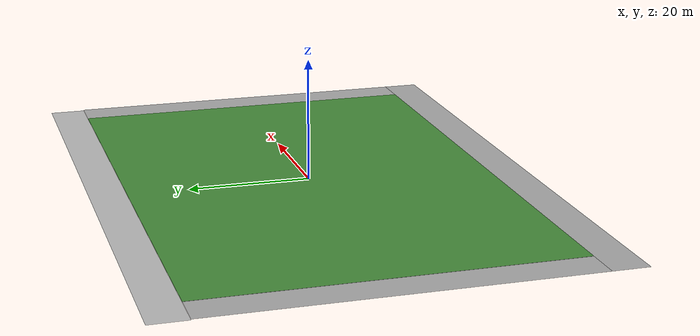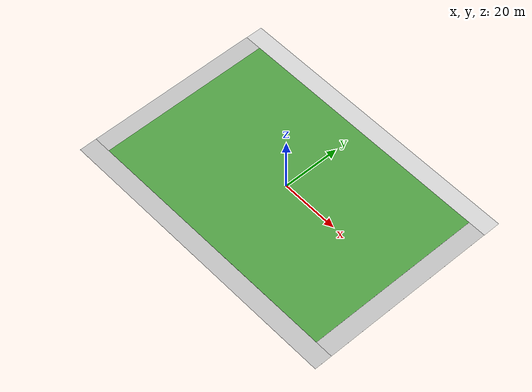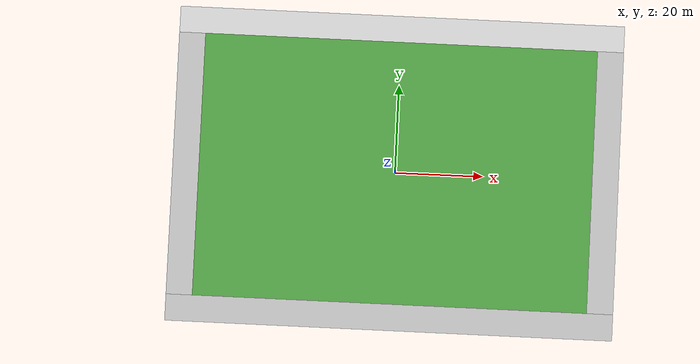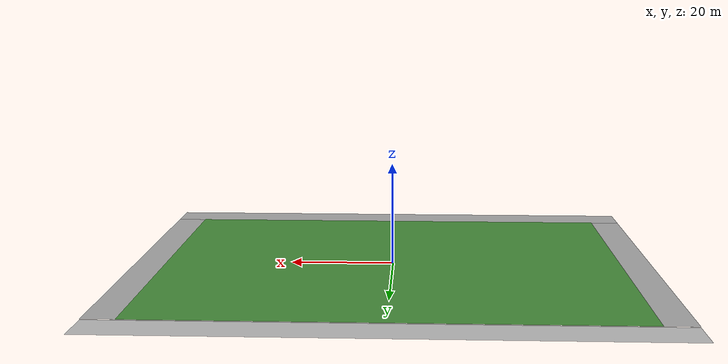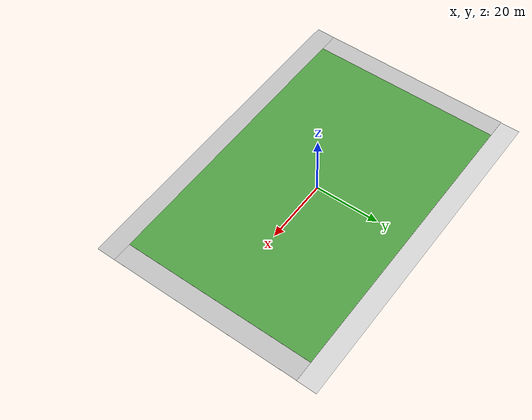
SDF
<sdf version="1.4">
 <world name="default">
  <light name="sun" type="directional">
   <pose>0 0 10 0 -0 0</pose>
   <diffuse>0.8 0.8 0.8 1</diffuse>
   <specular>0.2 0.2 0.2 1</specular>
   <attenuation>
    <range>1000</range>
    <constant>0.9</constant>
    <linear>0.01</linear>
    <quadratic>0.001</quadratic>
   </attenuation>
   <direction>-0.5 0.1 -0.9</direction>
  </light>
  <physics type="ode">
   <max_step_size>0.001</max_step_size>
   <real_time_factor>1</real_time_factor>
   <real_time_update_rate>1000</real_time_update_rate>
   <gravity>0 0 -9.8</gravity>
  </physics>
  <scene><ambient>0.4 0.4 0.4 1</ambient><background>0.7 0.7 0.7 1</background><shadows>1</shadows></scene>
  <model name="robocup_3Dsim_field_0">
   <static>1</static>
   <link name="RoboCup 3D Simulation Field::field">
    <pose>0 0 0.01 0 -0 0</pose>
    <collision name="collision">
     <geometry><plane><normal>0 0 1</normal><size>90 60</size></plane></geometry>
     <surface><friction><ode><mu>100</mu><mu2>50</mu2></ode></friction></surface>
    </collision>
    <visual name="base1">
     <pose>0 33 0.001 0 -0 0</pose>
     <geometry><plane><normal>0 0 1</normal><size>102 6</size></plane></geometry>
     <material>
      <script>
       <uri>model://robocup_3Dsim_field/materials/scripts/</uri>
       <uri>model://robocup_3Dsim_field/materials/textures/</uri>
       <name>RoboCup/FieldBorder</name>
      </script>
     </material>
    </visual>
    <visual name="base2">
     <pose>0 -33 0.001 0 -0 0</pose>
     <geometry><plane><normal>0 0 1</normal><size>102 6</size></plane></geometry>
     <material>
      <script>
       <uri>model://robocup_3Dsim_field/materials/scripts/</uri>
       <uri>model://robocup_3Dsim_field/materials/textures/</uri>
       <name>RoboCup/FieldBorder</name>
      </script>
     </material>
    </visual>
    <visual name="base3">
     <pose>48 0 0.001 0 -0 0</pose>
     <geometry><plane><normal>0 0 1</normal><size>6 60</size></plane></geometry>
     <material>
      <script>
       <uri>model://robocup_3Dsim_field/materials/scripts/</uri>
       <uri>model://robocup_3Dsim_field/materials/textures/</uri>
       <name>RoboCup/FieldBorder</name>
      </script>
     </material>
    </visual>
    <visual name="base4">
     <pose>-48 0 0.001 0 -0 0</pose>
     <geometry><plane><normal>0 0 1</normal><size>6 60</size></plane></geometry>
     <material>
      <script>
       <uri>model://robocup_3Dsim_field/materials/scripts/</uri>
       <uri>model://robocup_3Dsim_field/materials/textures/</uri>
       <name>RoboCup/FieldBorder</name>
      </script>
     </material>
    </visual>
    <visual name="carpet">
     <geometry><plane><normal>0 0 1</normal><size>90 60</size></plane></geometry>
     <material>
      <script>
       <uri>model://robocup_3Dsim_field/materials/scripts/</uri>
       <uri>model://robocup_3Dsim_field/materials/textures/</uri>
       <name>RoboCup/Grass</name>
      </script>
     </material>
    </visual>
   </link>
  </model>
  <light name="north_wall_light" type="directional">
   <pose>0 40 10 0 -0 0</pose>
   <diffuse>0.8 0.8 0.8 1</diffuse>
   <specular>0.2 0.2 0.2 1</specular>
   <attenuation>
    <range>1000</range>
    <constant>0.9</constant>
    <linear>0.01</linear>
    <quadratic>0.001</quadratic>
   </attenuation>
   <direction>0 -1 0</direction>
  </light>
  <light name="south_wall_light" type="directional">
   <pose>0 -40 10 0 -0 0</pose>
   <diffuse>0.8 0.8 0.8 1</diffuse>
   <specular>0.2 0.2 0.2 1</specular>
   <attenuation>
    <range>1000</range>
    <constant>0.9</constant>
    <linear>0.01</linear>
    <quadratic>0.001</quadratic>
   </attenuation>
   <direction>0 1 0</direction>
  </light>
  <light name="east_wall_light" type="directional">
   <pose>50 0 10 0 -0 0</pose>
   <diffuse>0.8 0.8 0.8 1</diffuse>
   <specular>0.2 0.2 0.2 1</specular>
   <attenuation>
    <range>1000</range>
    <constant>0.9</constant>
    <linear>0.01</linear>
    <quadratic>0.001</quadratic>
   </attenuation>
   <direction>-1 0 0</direction>
  </light>
  <light name="west_wall_light" type="directional">
   <pose>-50 0 10 0 -0 0</pose>
   <diffuse>0.8 0.8 0.8 1</diffuse>
   <specular>0.2 0.2 0.2 1</specular>
   <attenuation>
    <range>1000</range>
    <constant>0.9</constant>
    <linear>0.01</linear>
    <quadratic>0.001</quadratic>
   </attenuation>
   <direction>1 0 0</direction>
  </light>
 </world>
</sdf>
